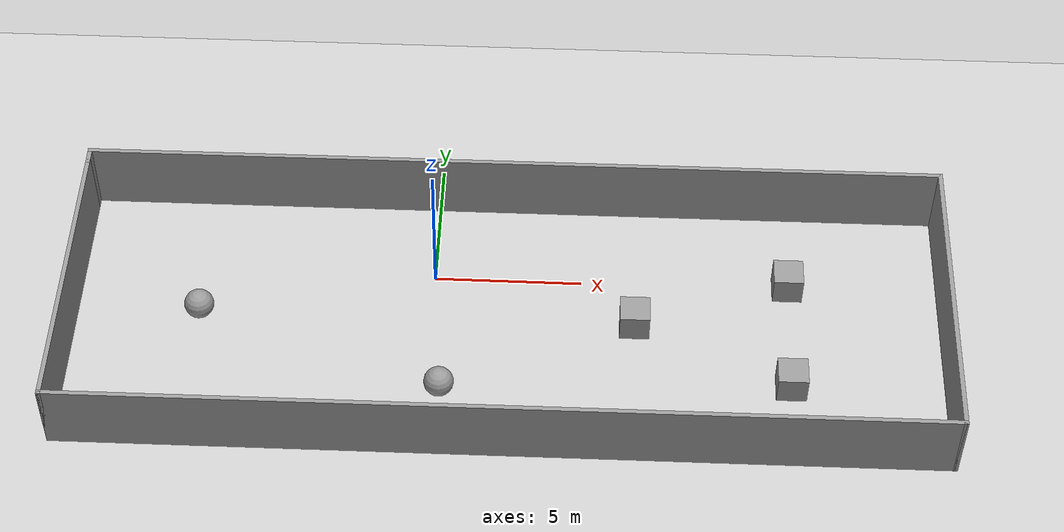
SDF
<sdf version="1.6">
 <world name="default">
  <light name="sun" type="directional">
   <pose>0 0 10 0 -0 0</pose>
   <diffuse>0.8 0.8 0.8 1</diffuse>
   <specular>0.2 0.2 0.2 1</specular>
   <attenuation>
    <range>1000</range>
    <constant>0.9</constant>
    <linear>0.01</linear>
    <quadratic>0.001</quadratic>
   </attenuation>
   <direction>-0.5 0.1 -0.9</direction>
  </light>
  <model name="ground_plane">
   <static>1</static>
   <link name="link">
    <collision name="collision">
     <geometry><plane><normal>0 0 1</normal><size>100 100</size></plane></geometry>
     <surface>
      <contact><collide_bitmask>65535</collide_bitmask></contact>
      <friction><ode><mu>100</mu><mu2>50</mu2></ode></friction>
     </surface>
    </collision>
    <visual name="visual">
     <cast_shadows>0</cast_shadows>
     <geometry><plane><normal>0 0 1</normal><size>100 100</size></plane></geometry>
     <material>
      <script><uri>file://media/materials/scripts/gazebo.material</uri><name>Gazebo/Grey</name></script>
     </material>
    </visual>
   </link>
  </model>
  <gravity>0 0 -9.8</gravity>
  <magnetic_field>6e-06 2.3e-05 -4.2e-05</magnetic_field>
  <atmosphere type="adiabatic"/>
  <physics name="default_physics" default="0" type="ode">
   <max_step_size>0.001</max_step_size>
   <real_time_factor>1</real_time_factor>
   <real_time_update_rate>1000</real_time_update_rate>
  </physics>
  <scene><ambient>0.4 0.4 0.4 1</ambient><background>0.7 0.7 0.7 1</background><shadows>1</shadows></scene>
  <spherical_coordinates>
   <surface_model>EARTH_WGS84</surface_model>
   <latitude_deg>0</latitude_deg>
   <longitude_deg>0</longitude_deg>
   <elevation>0</elevation>
   <heading_deg>0</heading_deg>
  </spherical_coordinates>
  <model name="pf_2">
   <pose>2.52753 -2.03844 0 0 -0 0</pose>
   <link name="Wall_3">
    <collision name="Wall_3_Collision">
     <geometry><box><size>10.25 0.15 2.5</size></box></geometry>
     <pose>0 0 1.25 0 -0 0</pose>
    </collision>
    <visual name="Wall_3_Visual">
     <pose>0 0 1.25 0 -0 0</pose>
     <geometry><box><size>10.25 0.15 2.5</size></box></geometry>
     <material>
      <script><uri>file://media/materials/scripts/gazebo.material</uri><name>Gazebo/Grey</name></script>
      <ambient>1 1 1 1</ambient>
     </material>
     <meta><layer>0</layer></meta>
    </visual>
    <pose>-14.675 -0.25 0 0 -0 -1.5708</pose>
   </link>
   <link name="Wall_4">
    <collision name="Wall_4_Collision">
     <geometry><box><size>29.5 0.15 2.5</size></box></geometry>
     <pose>0 0 1.25 0 -0 0</pose>
    </collision>
    <visual name="Wall_4_Visual">
     <pose>0 0 1.25 0 -0 0</pose>
     <geometry><box><size>29.5 0.15 2.5</size></box></geometry>
     <material>
      <script><uri>file://media/materials/scripts/gazebo.material</uri><name>Gazebo/Grey</name></script>
      <ambient>1 1 1 1</ambient>
     </material>
     <meta><layer>0</layer></meta>
    </visual>
    <pose>0 -5.3 0 0 -0 0</pose>
   </link>
   <link name="Wall_5">
    <collision name="Wall_5_Collision">
     <geometry><box><size>10.75 0.15 2.5</size></box></geometry>
     <pose>0 0 1.25 0 -0 0</pose>
    </collision>
    <visual name="Wall_5_Visual">
     <pose>0 0 1.25 0 -0 0</pose>
     <geometry><box><size>10.75 0.15 2.5</size></box></geometry>
     <material>
      <script><uri>file://media/materials/scripts/gazebo.material</uri><name>Gazebo/Grey</name></script>
      <ambient>1 1 1 1</ambient>
     </material>
     <meta><layer>0</layer></meta>
    </visual>
    <pose>14.675 0 0 0 -0 1.5708</pose>
   </link>
   <link name="Wall_6">
    <collision name="Wall_6_Collision">
     <geometry><box><size>29.5 0.15 2.5</size></box></geometry>
     <pose>0 0 1.25 0 -0 0</pose>
    </collision>
    <visual name="Wall_6_Visual">
     <pose>0 0 1.25 0 -0 0</pose>
     <geometry><box><size>29.5 0.15 2.5</size></box></geometry>
     <material>
      <script><uri>file://media/materials/scripts/gazebo.material</uri><name>Gazebo/Grey</name></script>
      <ambient>1 1 1 1</ambient>
     </material>
     <meta><layer>0</layer></meta>
    </visual>
    <pose>0 5.3 0 0 -0 3.14159</pose>
   </link>
   <link name="Wall_7">
    <collision name="Wall_7_Collision">
     <geometry><box><size>0.65 0.15 2.5</size></box></geometry>
     <pose>0 0 1.25 0 -0 0</pose>
    </collision>
    <visual name="Wall_7_Visual">
     <pose>0 0 1.25 0 -0 0</pose>
     <geometry><box><size>0.65 0.15 2.5</size></box></geometry>
     <material>
      <script><uri>file://media/materials/scripts/gazebo.material</uri><name>Gazebo/Grey</name></script>
      <ambient>1 1 1 1</ambient>
     </material>
     <meta><layer>0</layer></meta>
    </visual>
    <pose>-14.675 5.05 0 0 -0 -1.5708</pose>
   </link>
   <static>1</static>
  </model>
  <model name="unit_sphere">
   <pose>0.394489 -4.83017 0.5 0 -0 0</pose>
   <link name="link">
    <inertial>
     <mass>1</mass>
     <inertia><ixx>0.1</ixx><ixy>0</ixy><ixz>0</ixz><iyy>0.1</iyy><iyz>0</iyz><izz>0.1</izz></inertia>
    </inertial>
    <collision name="collision"><geometry><sphere><radius>0.5</radius></sphere></geometry></collision>
    <visual name="visual">
     <geometry><sphere><radius>0.5</radius></sphere></geometry>
     <material>
      <script><name>Gazebo/Grey</name><uri>file://media/materials/scripts/gazebo.material</uri></script>
     </material>
    </visual>
   </link>
  </model>
  <model name="unit_box">
   <pose>6.83191 -1.85198 0.499995 -1e-05 -0 -0</pose>
   <link name="link">
    <inertial>
     <mass>1</mass>
     <inertia>
      <ixx>0.166667</ixx>
      <ixy>0</ixy>
      <ixz>0</ixz>
      <iyy>0.166667</iyy>
      <iyz>0</iyz>
      <izz>0.166667</izz>
     </inertia>
    </inertial>
    <collision name="collision"><geometry><box><size>1 1 1</size></box></geometry></collision>
    <visual name="visual">
     <geometry><box><size>1 1 1</size></box></geometry>
     <material>
      <script><name>Gazebo/Grey</name><uri>file://media/materials/scripts/gazebo.material</uri></script>
     </material>
    </visual>
   </link>
  </model>
  <model name="unit_sphere_0">
   <pose>-7.90278 -1.83003 0.5 0 -0 0</pose>
   <link name="link">
    <inertial>
     <mass>1</mass>
     <inertia><ixx>0.1</ixx><ixy>0</ixy><ixz>0</ixz><iyy>0.1</iyy><iyz>0</iyz><izz>0.1</izz></inertia>
    </inertial>
    <collision name="collision"><geometry><sphere><radius>0.5</radius></sphere></geometry></collision>
    <visual name="visual">
     <geometry><sphere><radius>0.5</radius></sphere></geometry>
     <material>
      <script><name>Gazebo/Grey</name><uri>file://media/materials/scripts/gazebo.material</uri></script>
     </material>
    </visual>
   </link>
  </model>
  <model name="unit_box_0">
   <pose>12.0349 -4.27776 0.499995 -1e-05 -0 -0</pose>
   <link name="link">
    <inertial>
     <mass>1</mass>
     <inertia>
      <ixx>0.166667</ixx>
      <ixy>0</ixy>
      <ixz>0</ixz>
      <iyy>0.166667</iyy>
      <iyz>0</iyz>
      <izz>0.166667</izz>
     </inertia>
    </inertial>
    <collision name="collision"><geometry><box><size>1 1 1</size></box></geometry></collision>
    <visual name="visual">
     <geometry><box><size>1 1 1</size></box></geometry>
     <material>
      <script><name>Gazebo/Grey</name><uri>file://media/materials/scripts/gazebo.material</uri></script>
     </material>
    </visual>
   </link>
  </model>
  <model name="unit_box_1">
   <pose>12.0308 -0.011943 0.5 0 -0 0</pose>
   <link name="link">
    <inertial>
     <mass>1</mass>
     <inertia>
      <ixx>0.166667</ixx>
      <ixy>0</ixy>
      <ixz>0</ixz>
      <iyy>0.166667</iyy>
      <iyz>0</iyz>
      <izz>0.166667</izz>
     </inertia>
    </inertial>
    <collision name="collision"><geometry><box><size>1 1 1</size></box></geometry></collision>
    <visual name="visual">
     <geometry><box><size>1 1 1</size></box></geometry>
     <material>
      <script><name>Gazebo/Grey</name><uri>file://media/materials/scripts/gazebo.material</uri></script>
     </material>
    </visual>
   </link>
  </model>
 </world>
</sdf>
